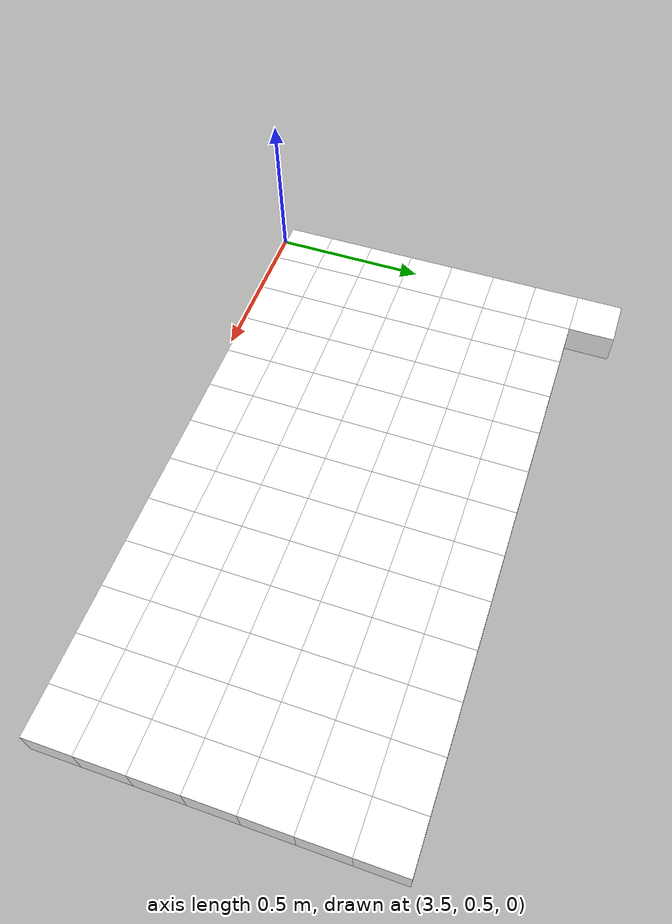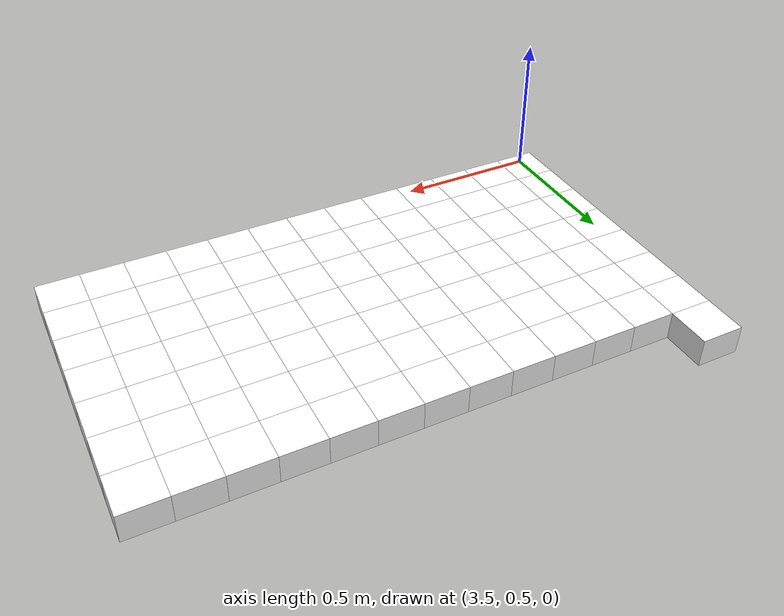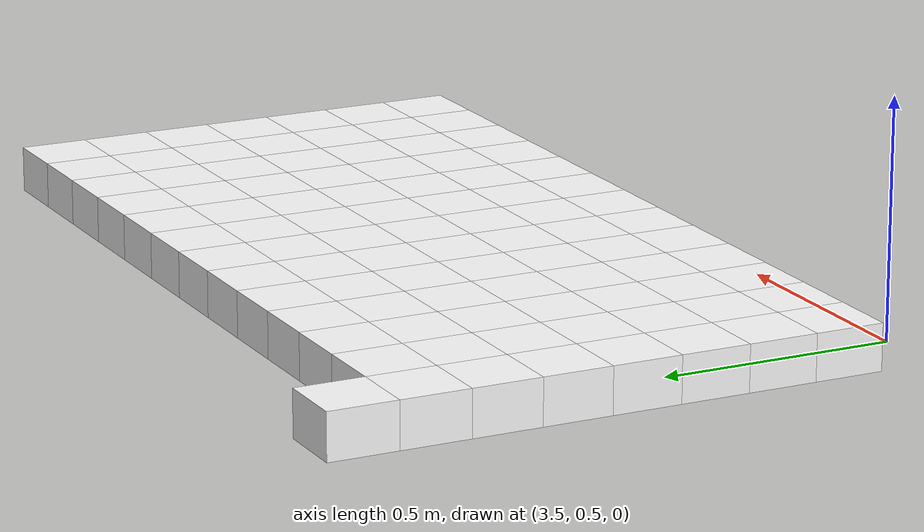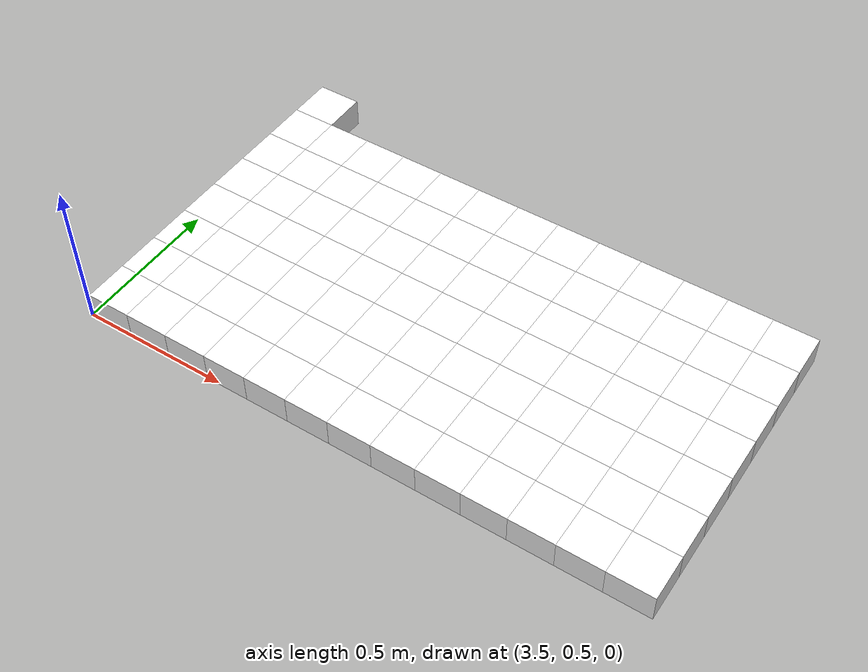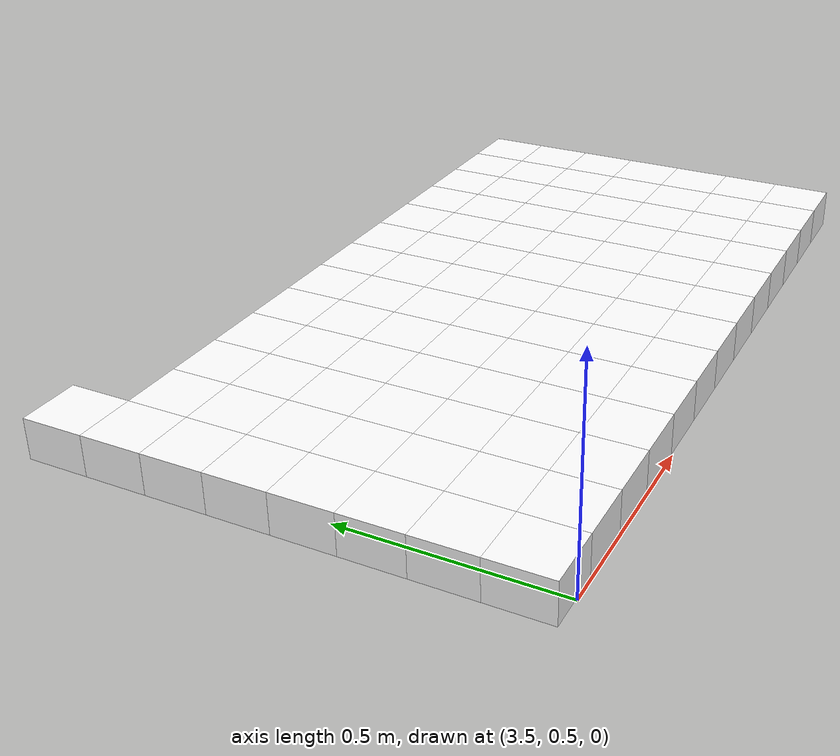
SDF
<sdf version="1.7">
 <world name="default">
  <include><uri>model://sun</uri></include>
  <model name="static_environment">
   <static>true</static>
   <link name="region_427">
    <pose>3.5500000000000025 0.6 0.0 0.0 0.0 0.0</pose>
    <collision name="region_427_collision">
     <geometry><box><size>0.15 0.15 0.1</size></box></geometry>
     <surface><friction><ode><mu>1.0</mu><mu2>1.0</mu2></ode></friction></surface>
    </collision>
    <visual name="region_427_visual">
     <geometry><box><size>0.15 0.15 0.1</size></box></geometry>
     <material><ambient>1.0 1.0 1.0 1.0</ambient><diffuse>1.0 1.0 1.0 1.0</diffuse></material>
    </visual>
   </link>
   <link name="region_428">
    <pose>3.700000000000003 0.6 0.0 0.0 0.0 0.0</pose>
    <collision name="region_428_collision">
     <geometry><box><size>0.15 0.15 0.1</size></box></geometry>
     <surface><friction><ode><mu>1.0</mu><mu2>1.0</mu2></ode></friction></surface>
    </collision>
    <visual name="region_428_visual">
     <geometry><box><size>0.15 0.15 0.1</size></box></geometry>
     <material><ambient>1.0 1.0 1.0 1.0</ambient><diffuse>1.0 1.0 1.0 1.0</diffuse></material>
    </visual>
   </link>
   <link name="region_429">
    <pose>3.850000000000003 0.6 0.0 0.0 0.0 0.0</pose>
    <collision name="region_429_collision">
     <geometry><box><size>0.15 0.15 0.1</size></box></geometry>
     <surface><friction><ode><mu>1.0</mu><mu2>1.0</mu2></ode></friction></surface>
    </collision>
    <visual name="region_429_visual">
     <geometry><box><size>0.15 0.15 0.1</size></box></geometry>
     <material><ambient>1.0 1.0 1.0 1.0</ambient><diffuse>1.0 1.0 1.0 1.0</diffuse></material>
    </visual>
   </link>
   <link name="region_430">
    <pose>4.0000000000000036 0.6 0.0 0.0 0.0 0.0</pose>
    <collision name="region_430_collision">
     <geometry><box><size>0.15 0.15 0.1</size></box></geometry>
     <surface><friction><ode><mu>1.0</mu><mu2>1.0</mu2></ode></friction></surface>
    </collision>
    <visual name="region_430_visual">
     <geometry><box><size>0.15 0.15 0.1</size></box></geometry>
     <material><ambient>1.0 1.0 1.0 1.0</ambient><diffuse>1.0 1.0 1.0 1.0</diffuse></material>
    </visual>
   </link>
   <link name="region_431">
    <pose>4.150000000000004 0.6 0.0 0.0 0.0 0.0</pose>
    <collision name="region_431_collision">
     <geometry><box><size>0.15 0.15 0.1</size></box></geometry>
     <surface><friction><ode><mu>1.0</mu><mu2>1.0</mu2></ode></friction></surface>
    </collision>
    <visual name="region_431_visual">
     <geometry><box><size>0.15 0.15 0.1</size></box></geometry>
     <material><ambient>1.0 1.0 1.0 1.0</ambient><diffuse>1.0 1.0 1.0 1.0</diffuse></material>
    </visual>
   </link>
   <link name="region_432">
    <pose>4.300000000000004 0.6 0.0 0.0 0.0 0.0</pose>
    <collision name="region_432_collision">
     <geometry><box><size>0.15 0.15 0.1</size></box></geometry>
     <surface><friction><ode><mu>1.0</mu><mu2>1.0</mu2></ode></friction></surface>
    </collision>
    <visual name="region_432_visual">
     <geometry><box><size>0.15 0.15 0.1</size></box></geometry>
     <material><ambient>1.0 1.0 1.0 1.0</ambient><diffuse>1.0 1.0 1.0 1.0</diffuse></material>
    </visual>
   </link>
   <link name="region_433">
    <pose>4.450000000000005 0.6 0.0 0.0 0.0 0.0</pose>
    <collision name="region_433_collision">
     <geometry><box><size>0.15 0.15 0.1</size></box></geometry>
     <surface><friction><ode><mu>1.0</mu><mu2>1.0</mu2></ode></friction></surface>
    </collision>
    <visual name="region_433_visual">
     <geometry><box><size>0.15 0.15 0.1</size></box></geometry>
     <material><ambient>1.0 1.0 1.0 1.0</ambient><diffuse>1.0 1.0 1.0 1.0</diffuse></material>
    </visual>
   </link>
   <link name="region_434">
    <pose>4.600000000000005 0.6 0.0 0.0 0.0 0.0</pose>
    <collision name="region_434_collision">
     <geometry><box><size>0.15 0.15 0.1</size></box></geometry>
     <surface><friction><ode><mu>1.0</mu><mu2>1.0</mu2></ode></friction></surface>
    </collision>
    <visual name="region_434_visual">
     <geometry><box><size>0.15 0.15 0.1</size></box></geometry>
     <material><ambient>1.0 1.0 1.0 1.0</ambient><diffuse>1.0 1.0 1.0 1.0</diffuse></material>
    </visual>
   </link>
   <link name="region_435">
    <pose>4.750000000000005 0.6 0.0 0.0 0.0 0.0</pose>
    <collision name="region_435_collision">
     <geometry><box><size>0.15 0.15 0.1</size></box></geometry>
     <surface><friction><ode><mu>1.0</mu><mu2>1.0</mu2></ode></friction></surface>
    </collision>
    <visual name="region_435_visual">
     <geometry><box><size>0.15 0.15 0.1</size></box></geometry>
     <material><ambient>1.0 1.0 1.0 1.0</ambient><diffuse>1.0 1.0 1.0 1.0</diffuse></material>
    </visual>
   </link>
   <link name="region_436">
    <pose>4.900000000000006 0.6 0.0 0.0 0.0 0.0</pose>
    <collision name="region_436_collision">
     <geometry><box><size>0.15 0.15 0.1</size></box></geometry>
     <surface><friction><ode><mu>1.0</mu><mu2>1.0</mu2></ode></friction></surface>
    </collision>
    <visual name="region_436_visual">
     <geometry><box><size>0.15 0.15 0.1</size></box></geometry>
     <material><ambient>1.0 1.0 1.0 1.0</ambient><diffuse>1.0 1.0 1.0 1.0</diffuse></material>
    </visual>
   </link>
   <link name="region_437">
    <pose>5.050000000000006 0.6 0.0 0.0 0.0 0.0</pose>
    <collision name="region_437_collision">
     <geometry><box><size>0.15 0.15 0.1</size></box></geometry>
     <surface><friction><ode><mu>1.0</mu><mu2>1.0</mu2></ode></friction></surface>
    </collision>
    <visual name="region_437_visual">
     <geometry><box><size>0.15 0.15 0.1</size></box></geometry>
     <material><ambient>1.0 1.0 1.0 1.0</ambient><diffuse>1.0 1.0 1.0 1.0</diffuse></material>
    </visual>
   </link>
   <link name="region_438">
    <pose>5.200000000000006 0.6 0.0 0.0 0.0 0.0</pose>
    <collision name="region_438_collision">
     <geometry><box><size>0.15 0.15 0.1</size></box></geometry>
     <surface><friction><ode><mu>1.0</mu><mu2>1.0</mu2></ode></friction></surface>
    </collision>
    <visual name="region_438_visual">
     <geometry><box><size>0.15 0.15 0.1</size></box></geometry>
     <material><ambient>1.0 1.0 1.0 1.0</ambient><diffuse>1.0 1.0 1.0 1.0</diffuse></material>
    </visual>
   </link>
   <link name="region_439">
    <pose>5.350000000000007 0.6 0.0 0.0 0.0 0.0</pose>
    <collision name="region_439_collision">
     <geometry><box><size>0.15 0.15 0.1</size></box></geometry>
     <surface><friction><ode><mu>1.0</mu><mu2>1.0</mu2></ode></friction></surface>
    </collision>
    <visual name="region_439_visual">
     <geometry><box><size>0.15 0.15 0.1</size></box></geometry>
     <material><ambient>1.0 1.0 1.0 1.0</ambient><diffuse>1.0 1.0 1.0 1.0</diffuse></material>
    </visual>
   </link>
   <link name="region_447">
    <pose>3.5500000000000025 0.75 0.0 0.0 0.0 0.0</pose>
    <collision name="region_447_collision">
     <geometry><box><size>0.15 0.15 0.1</size></box></geometry>
     <surface><friction><ode><mu>1.0</mu><mu2>1.0</mu2></ode></friction></surface>
    </collision>
    <visual name="region_447_visual">
     <geometry><box><size>0.15 0.15 0.1</size></box></geometry>
     <material><ambient>1.0 1.0 1.0 1.0</ambient><diffuse>1.0 1.0 1.0 1.0</diffuse></material>
    </visual>
   </link>
   <link name="region_448">
    <pose>3.700000000000003 0.75 0.0 0.0 0.0 0.0</pose>
    <collision name="region_448_collision">
     <geometry><box><size>0.15 0.15 0.1</size></box></geometry>
     <surface><friction><ode><mu>1.0</mu><mu2>1.0</mu2></ode></friction></surface>
    </collision>
    <visual name="region_448_visual">
     <geometry><box><size>0.15 0.15 0.1</size></box></geometry>
     <material><ambient>1.0 1.0 1.0 1.0</ambient><diffuse>1.0 1.0 1.0 1.0</diffuse></material>
    </visual>
   </link>
   <link name="region_449">
    <pose>3.850000000000003 0.75 0.0 0.0 0.0 0.0</pose>
    <collision name="region_449_collision">
     <geometry><box><size>0.15 0.15 0.1</size></box></geometry>
     <surface><friction><ode><mu>1.0</mu><mu2>1.0</mu2></ode></friction></surface>
    </collision>
    <visual name="region_449_visual">
     <geometry><box><size>0.15 0.15 0.1</size></box></geometry>
     <material><ambient>1.0 1.0 1.0 1.0</ambient><diffuse>1.0 1.0 1.0 1.0</diffuse></material>
    </visual>
   </link>
   <link name="region_450">
    <pose>4.0000000000000036 0.75 0.0 0.0 0.0 0.0</pose>
    <collision name="region_450_collision">
     <geometry><box><size>0.15 0.15 0.1</size></box></geometry>
     <surface><friction><ode><mu>1.0</mu><mu2>1.0</mu2></ode></friction></surface>
    </collision>
    <visual name="region_450_visual">
     <geometry><box><size>0.15 0.15 0.1</size></box></geometry>
     <material><ambient>1.0 1.0 1.0 1.0</ambient><diffuse>1.0 1.0 1.0 1.0</diffuse></material>
    </visual>
   </link>
   <link name="region_451">
    <pose>4.150000000000004 0.75 0.0 0.0 0.0 0.0</pose>
    <collision name="region_451_collision">
     <geometry><box><size>0.15 0.15 0.1</size></box></geometry>
     <surface><friction><ode><mu>1.0</mu><mu2>1.0</mu2></ode></friction></surface>
    </collision>
    <visual name="region_451_visual">
     <geometry><box><size>0.15 0.15 0.1</size></box></geometry>
     <material><ambient>1.0 1.0 1.0 1.0</ambient><diffuse>1.0 1.0 1.0 1.0</diffuse></material>
    </visual>
   </link>
   <link name="region_452">
    <pose>4.300000000000004 0.75 0.0 0.0 0.0 0.0</pose>
    <collision name="region_452_collision">
     <geometry><box><size>0.15 0.15 0.1</size></box></geometry>
     <surface><friction><ode><mu>1.0</mu><mu2>1.0</mu2></ode></friction></surface>
    </collision>
    <visual name="region_452_visual">
     <geometry><box><size>0.15 0.15 0.1</size></box></geometry>
     <material><ambient>1.0 1.0 1.0 1.0</ambient><diffuse>1.0 1.0 1.0 1.0</diffuse></material>
    </visual>
   </link>
   <link name="region_453">
    <pose>4.450000000000005 0.75 0.0 0.0 0.0 0.0</pose>
    <collision name="region_453_collision">
     <geometry><box><size>0.15 0.15 0.1</size></box></geometry>
     <surface><friction><ode><mu>1.0</mu><mu2>1.0</mu2></ode></friction></surface>
    </collision>
    <visual name="region_453_visual">
     <geometry><box><size>0.15 0.15 0.1</size></box></geometry>
     <material><ambient>1.0 1.0 1.0 1.0</ambient><diffuse>1.0 1.0 1.0 1.0</diffuse></material>
    </visual>
   </link>
   <link name="region_454">
    <pose>4.600000000000005 0.75 0.0 0.0 0.0 0.0</pose>
    <collision name="region_454_collision">
     <geometry><box><size>0.15 0.15 0.1</size></box></geometry>
     <surface><friction><ode><mu>1.0</mu><mu2>1.0</mu2></ode></friction></surface>
    </collision>
    <visual name="region_454_visual">
     <geometry><box><size>0.15 0.15 0.1</size></box></geometry>
     <material><ambient>1.0 1.0 1.0 1.0</ambient><diffuse>1.0 1.0 1.0 1.0</diffuse></material>
    </visual>
   </link>
   <link name="region_455">
    <pose>4.750000000000005 0.75 0.0 0.0 0.0 0.0</pose>
    <collision name="region_455_collision">
     <geometry><box><size>0.15 0.15 0.1</size></box></geometry>
     <surface><friction><ode><mu>1.0</mu><mu2>1.0</mu2></ode></friction></surface>
    </collision>
    <visual name="region_455_visual">
     <geometry><box><size>0.15 0.15 0.1</size></box></geometry>
     <material><ambient>1.0 1.0 1.0 1.0</ambient><diffuse>1.0 1.0 1.0 1.0</diffuse></material>
    </visual>
   </link>
   <link name="region_456">
    <pose>4.900000000000006 0.75 0.0 0.0 0.0 0.0</pose>
    <collision name="region_456_collision">
     <geometry><box><size>0.15 0.15 0.1</size></box></geometry>
     <surface><friction><ode><mu>1.0</mu><mu2>1.0</mu2></ode></friction></surface>
    </collision>
    <visual name="region_456_visual">
     <geometry><box><size>0.15 0.15 0.1</size></box></geometry>
     <material><ambient>1.0 1.0 1.0 1.0</ambient><diffuse>1.0 1.0 1.0 1.0</diffuse></material>
    </visual>
   </link>
   <link name="region_457">
    <pose>5.050000000000006 0.75 0.0 0.0 0.0 0.0</pose>
    <collision name="region_457_collision">
     <geometry><box><size>0.15 0.15 0.1</size></box></geometry>
     <surface><friction><ode><mu>1.0</mu><mu2>1.0</mu2></ode></friction></surface>
    </collision>
    <visual name="region_457_visual">
     <geometry><box><size>0.15 0.15 0.1</size></box></geometry>
     <material><ambient>1.0 1.0 1.0 1.0</ambient><diffuse>1.0 1.0 1.0 1.0</diffuse></material>
    </visual>
   </link>
   <link name="region_458">
    <pose>5.200000000000006 0.75 0.0 0.0 0.0 0.0</pose>
    <collision name="region_458_collision">
     <geometry><box><size>0.15 0.15 0.1</size></box></geometry>
     <surface><friction><ode><mu>1.0</mu><mu2>1.0</mu2></ode></friction></surface>
    </collision>
    <visual name="region_458_visual">
     <geometry><box><size>0.15 0.15 0.1</size></box></geometry>
     <material><ambient>1.0 1.0 1.0 1.0</ambient><diffuse>1.0 1.0 1.0 1.0</diffuse></material>
    </visual>
   </link>
   <link name="region_459">
    <pose>5.350000000000007 0.75 0.0 0.0 0.0 0.0</pose>
    <collision name="region_459_collision">
     <geometry><box><size>0.15 0.15 0.1</size></box></geometry>
     <surface><friction><ode><mu>1.0</mu><mu2>1.0</mu2></ode></friction></surface>
    </collision>
    <visual name="region_459_visual">
     <geometry><box><size>0.15 0.15 0.1</size></box></geometry>
     <material><ambient>1.0 1.0 1.0 1.0</ambient><diffuse>1.0 1.0 1.0 1.0</diffuse></material>
    </visual>
   </link>
   <link name="region_467">
    <pose>3.5500000000000025 0.8999999999999999 0.0 0.0 0.0 0.0</pose>
    <collision name="region_467_collision">
     <geometry><box><size>0.15 0.15 0.1</size></box></geometry>
     <surface><friction><ode><mu>1.0</mu><mu2>1.0</mu2></ode></friction></surface>
    </collision>
    <visual name="region_467_visual">
     <geometry><box><size>0.15 0.15 0.1</size></box></geometry>
     <material><ambient>1.0 1.0 1.0 1.0</ambient><diffuse>1.0 1.0 1.0 1.0</diffuse></material>
    </visual>
   </link>
   <link name="region_468">
    <pose>3.700000000000003 0.8999999999999999 0.0 0.0 0.0 0.0</pose>
    <collision name="region_468_collision">
     <geometry><box><size>0.15 0.15 0.1</size></box></geometry>
     <surface><friction><ode><mu>1.0</mu><mu2>1.0</mu2></ode></friction></surface>
    </collision>
    <visual name="region_468_visual">
     <geometry><box><size>0.15 0.15 0.1</size></box></geometry>
     <material><ambient>1.0 1.0 1.0 1.0</ambient><diffuse>1.0 1.0 1.0 1.0</diffuse></material>
    </visual>
   </link>
   <link name="region_469">
    <pose>3.850000000000003 0.8999999999999999 0.0 0.0 0.0 0.0</pose>
    <collision name="region_469_collision">
     <geometry><box><size>0.15 0.15 0.1</size></box></geometry>
     <surface><friction><ode><mu>1.0</mu><mu2>1.0</mu2></ode></friction></surface>
    </collision>
    <visual name="region_469_visual">
     <geometry><box><size>0.15 0.15 0.1</size></box></geometry>
     <material><ambient>1.0 1.0 1.0 1.0</ambient><diffuse>1.0 1.0 1.0 1.0</diffuse></material>
    </visual>
   </link>
   <link name="region_470">
    <pose>4.0000000000000036 0.8999999999999999 0.0 0.0 0.0 0.0</pose>
    <collision name="region_470_collision">
     <geometry><box><size>0.15 0.15 0.1</size></box></geometry>
     <surface><friction><ode><mu>1.0</mu><mu2>1.0</mu2></ode></friction></surface>
    </collision>
    <visual name="region_470_visual">
     <geometry><box><size>0.15 0.15 0.1</size></box></geometry>
     <material><ambient>1.0 1.0 1.0 1.0</ambient><diffuse>1.0 1.0 1.0 1.0</diffuse></material>
    </visual>
   </link>
   <link name="region_471">
    <pose>4.150000000000004 0.8999999999999999 0.0 0.0 0.0 0.0</pose>
    <collision name="region_471_collision">
     <geometry><box><size>0.15 0.15 0.1</size></box></geometry>
     <surface><friction><ode><mu>1.0</mu><mu2>1.0</mu2></ode></friction></surface>
    </collision>
    <visual name="region_471_visual">
     <geometry><box><size>0.15 0.15 0.1</size></box></geometry>
     <material><ambient>1.0 1.0 1.0 1.0</ambient><diffuse>1.0 1.0 1.0 1.0</diffuse></material>
    </visual>
   </link>
   <link name="region_472">
    <pose>4.300000000000004 0.8999999999999999 0.0 0.0 0.0 0.0</pose>
    <collision name="region_472_collision">
     <geometry><box><size>0.15 0.15 0.1</size></box></geometry>
     <surface><friction><ode><mu>1.0</mu><mu2>1.0</mu2></ode></friction></surface>
    </collision>
    <visual name="region_472_visual">
     <geometry><box><size>0.15 0.15 0.1</size></box></geometry>
     <material><ambient>1.0 1.0 1.0 1.0</ambient><diffuse>1.0 1.0 1.0 1.0</diffuse></material>
    </visual>
   </link>
   <link name="region_473">
    <pose>4.450000000000005 0.8999999999999999 0.0 0.0 0.0 0.0</pose>
    <collision name="region_473_collision">
     <geometry><box><size>0.15 0.15 0.1</size></box></geometry>
     <surface><friction><ode><mu>1.0</mu><mu2>1.0</mu2></ode></friction></surface>
    </collision>
    <visual name="region_473_visual">
     <geometry><box><size>0.15 0.15 0.1</size></box></geometry>
     <material><ambient>1.0 1.0 1.0 1.0</ambient><diffuse>1.0 1.0 1.0 1.0</diffuse></material>
    </visual>
   </link>
   <link name="region_474">
    <pose>4.600000000000005 0.8999999999999999 0.0 0.0 0.0 0.0</pose>
    <collision name="region_474_collision">
     <geometry><box><size>0.15 0.15 0.1</size></box></geometry>
     <surface><friction><ode><mu>1.0</mu><mu2>1.0</mu2></ode></friction></surface>
    </collision>
    <visual name="region_474_visual">
     <geometry><box><size>0.15 0.15 0.1</size></box></geometry>
     <material><ambient>1.0 1.0 1.0 1.0</ambient><diffuse>1.0 1.0 1.0 1.0</diffuse></material>
    </visual>
   </link>
   <link name="region_475">
    <pose>4.750000000000005 0.8999999999999999 0.0 0.0 0.0 0.0</pose>
    <collision name="region_475_collision">
     <geometry><box><size>0.15 0.15 0.1</size></box></geometry>
     <surface><friction><ode><mu>1.0</mu><mu2>1.0</mu2></ode></friction></surface>
    </collision>
    <visual name="region_475_visual">
     <geometry><box><size>0.15 0.15 0.1</size></box></geometry>
     <material><ambient>1.0 1.0 1.0 1.0</ambient><diffuse>1.0 1.0 1.0 1.0</diffuse></material>
    </visual>
   </link>
   <link name="region_476">
    <pose>4.900000000000006 0.8999999999999999 0.0 0.0 0.0 0.0</pose>
    <collision name="region_476_collision">
     <geometry><box><size>0.15 0.15 0.1</size></box></geometry>
     <surface><friction><ode><mu>1.0</mu><mu2>1.0</mu2></ode></friction></surface>
    </collision>
    <visual name="region_476_visual">
     <geometry><box><size>0.15 0.15 0.1</size></box></geometry>
     <material><ambient>1.0 1.0 1.0 1.0</ambient><diffuse>1.0 1.0 1.0 1.0</diffuse></material>
    </visual>
   </link>
   <link name="region_477">
    <pose>5.050000000000006 0.8999999999999999 0.0 0.0 0.0 0.0</pose>
    <collision name="region_477_collision">
     <geometry><box><size>0.15 0.15 0.1</size></box></geometry>
     <surface><friction><ode><mu>1.0</mu><mu2>1.0</mu2></ode></friction></surface>
    </collision>
    <visual name="region_477_visual">
     <geometry><box><size>0.15 0.15 0.1</size></box></geometry>
     <material><ambient>1.0 1.0 1.0 1.0</ambient><diffuse>1.0 1.0 1.0 1.0</diffuse></material>
    </visual>
   </link>
   <link name="region_478">
    <pose>5.200000000000006 0.8999999999999999 0.0 0.0 0.0 0.0</pose>
    <collision name="region_478_collision">
     <geometry><box><size>0.15 0.15 0.1</size></box></geometry>
     <surface><friction><ode><mu>1.0</mu><mu2>1.0</mu2></ode></friction></surface>
    </collision>
    <visual name="region_478_visual">
     <geometry><box><size>0.15 0.15 0.1</size></box></geometry>
     <material><ambient>1.0 1.0 1.0 1.0</ambient><diffuse>1.0 1.0 1.0 1.0</diffuse></material>
    </visual>
   </link>
   <link name="region_479">
    <pose>5.350000000000007 0.8999999999999999 0.0 0.0 0.0 0.0</pose>
    <collision name="region_479_collision">
     <geometry><box><size>0.15 0.15 0.1</size></box></geometry>
     <surface><friction><ode><mu>1.0</mu><mu2>1.0</mu2></ode></friction></surface>
    </collision>
    <visual name="region_479_visual">
     <geometry><box><size>0.15 0.15 0.1</size></box></geometry>
     <material><ambient>1.0 1.0 1.0 1.0</ambient><diffuse>1.0 1.0 1.0 1.0</diffuse></material>
    </visual>
   </link>
   <link name="region_487">
    <pose>3.5500000000000025 1.0499999999999998 0.0 0.0 0.0 0.0</pose>
    <collision name="region_487_collision">
     <geometry><box><size>0.15 0.15 0.1</size></box></geometry>
     <surface><friction><ode><mu>1.0</mu><mu2>1.0</mu2></ode></friction></surface>
    </collision>
    <visual name="region_487_visual">
     <geometry><box><size>0.15 0.15 0.1</size></box></geometry>
     <material><ambient>1.0 1.0 1.0 1.0</ambient><diffuse>1.0 1.0 1.0 1.0</diffuse></material>
    </visual>
   </link>
   <link name="region_488">
    <pose>3.700000000000003 1.0499999999999998 0.0 0.0 0.0 0.0</pose>
    <collision name="region_488_collision">
     <geometry><box><size>0.15 0.15 0.1</size></box></geometry>
     <surface><friction><ode><mu>1.0</mu><mu2>1.0</mu2></ode></friction></surface>
    </collision>
    <visual name="region_488_visual">
     <geometry><box><size>0.15 0.15 0.1</size></box></geometry>
     <material><ambient>1.0 1.0 1.0 1.0</ambient><diffuse>1.0 1.0 1.0 1.0</diffuse></material>
    </visual>
   </link>
   <link name="region_489">
    <pose>3.850000000000003 1.0499999999999998 0.0 0.0 0.0 0.0</pose>
    <collision name="region_489_collision">
     <geometry><box><size>0.15 0.15 0.1</size></box></geometry>
     <surface><friction><ode><mu>1.0</mu><mu2>1.0</mu2></ode></friction></surface>
    </collision>
    <visual name="region_489_visual">
     <geometry><box><size>0.15 0.15 0.1</size></box></geometry>
     <material><ambient>1.0 1.0 1.0 1.0</ambient><diffuse>1.0 1.0 1.0 1.0</diffuse></material>
    </visual>
   </link>
   <link name="region_490">
    <pose>4.0000000000000036 1.0499999999999998 0.0 0.0 0.0 0.0</pose>
    <collision name="region_490_collision">
     <geometry><box><size>0.15 0.15 0.1</size></box></geometry>
     <surface><friction><ode><mu>1.0</mu><mu2>1.0</mu2></ode></friction></surface>
    </collision>
    <visual name="region_490_visual">
     <geometry><box><size>0.15 0.15 0.1</size></box></geometry>
     <material><ambient>1.0 1.0 1.0 1.0</ambient><diffuse>1.0 1.0 1.0 1.0</diffuse></material>
    </visual>
   </link>
   <link name="region_491">
    <pose>4.150000000000004 1.0499999999999998 0.0 0.0 0.0 0.0</pose>
    <collision name="region_491_collision">
     <geometry><box><size>0.15 0.15 0.1</size></box></geometry>
     <surface><friction><ode><mu>1.0</mu><mu2>1.0</mu2></ode></friction></surface>
    </collision>
    <visual name="region_491_visual">
     <geometry><box><size>0.15 0.15 0.1</size></box></geometry>
     <material><ambient>1.0 1.0 1.0 1.0</ambient><diffuse>1.0 1.0 1.0 1.0</diffuse></material>
    </visual>
   </link>
   <link name="region_492">
    <pose>4.300000000000004 1.0499999999999998 0.0 0.0 0.0 0.0</pose>
    <collision name="region_492_collision">
     <geometry><box><size>0.15 0.15 0.1</size></box></geometry>
     <surface><friction><ode><mu>1.0</mu><mu2>1.0</mu2></ode></friction></surface>
    </collision>
    <visual name="region_492_visual">
     <geometry><box><size>0.15 0.15 0.1</size></box></geometry>
     <material><ambient>1.0 1.0 1.0 1.0</ambient><diffuse>1.0 1.0 1.0 1.0</diffuse></material>
    </visual>
   </link>
   <link name="region_493">
    <pose>4.450000000000005 1.0499999999999998 0.0 0.0 0.0 0.0</pose>
    <collision name="region_493_collision">
     <geometry><box><size>0.15 0.15 0.1</size></box></geometry>
     <surface><friction><ode><mu>1.0</mu><mu2>1.0</mu2></ode></friction></surface>
    </collision>
    <visual name="region_493_visual">
     <geometry><box><size>0.15 0.15 0.1</size></box></geometry>
     <material><ambient>1.0 1.0 1.0 1.0</ambient><diffuse>1.0 1.0 1.0 1.0</diffuse></material>
    </visual>
   </link>
   <link name="region_494">
    <pose>4.600000000000005 1.0499999999999998 0.0 0.0 0.0 0.0</pose>
    <collision name="region_494_collision">
     <geometry><box><size>0.15 0.15 0.1</size></box></geometry>
     <surface><friction><ode><mu>1.0</mu><mu2>1.0</mu2></ode></friction></surface>
    </collision>
    <visual name="region_494_visual">
     <geometry><box><size>0.15 0.15 0.1</size></box></geometry>
     <material><ambient>1.0 1.0 1.0 1.0</ambient><diffuse>1.0 1.0 1.0 1.0</diffuse></material>
    </visual>
   </link>
   <link name="region_495">
    <pose>4.750000000000005 1.0499999999999998 0.0 0.0 0.0 0.0</pose>
    <collision name="region_495_collision">
     <geometry><box><size>0.15 0.15 0.1</size></box></geometry>
     <surface><friction><ode><mu>1.0</mu><mu2>1.0</mu2></ode></friction></surface>
    </collision>
    <visual name="region_495_visual">
     <geometry><box><size>0.15 0.15 0.1</size></box></geometry>
     <material><ambient>1.0 1.0 1.0 1.0</ambient><diffuse>1.0 1.0 1.0 1.0</diffuse></material>
    </visual>
   </link>
   <link name="region_496">
    <pose>4.900000000000006 1.0499999999999998 0.0 0.0 0.0 0.0</pose>
    <collision name="region_496_collision">
     <geometry><box><size>0.15 0.15 0.1</size></box></geometry>
     <surface><friction><ode><mu>1.0</mu><mu2>1.0</mu2></ode></friction></surface>
    </collision>
    <visual name="region_496_visual">
     <geometry><box><size>0.15 0.15 0.1</size></box></geometry>
     <material><ambient>1.0 1.0 1.0 1.0</ambient><diffuse>1.0 1.0 1.0 1.0</diffuse></material>
    </visual>
   </link>
   <link name="region_497">
    <pose>5.050000000000006 1.0499999999999998 0.0 0.0 0.0 0.0</pose>
    <collision name="region_497_collision">
     <geometry><box><size>0.15 0.15 0.1</size></box></geometry>
     <surface><friction><ode><mu>1.0</mu><mu2>1.0</mu2></ode></friction></surface>
    </collision>
    <visual name="region_497_visual">
     <geometry><box><size>0.15 0.15 0.1</size></box></geometry>
     <material><ambient>1.0 1.0 1.0 1.0</ambient><diffuse>1.0 1.0 1.0 1.0</diffuse></material>
    </visual>
   </link>
   <link name="region_498">
    <pose>5.200000000000006 1.0499999999999998 0.0 0.0 0.0 0.0</pose>
    <collision name="region_498_collision">
     <geometry><box><size>0.15 0.15 0.1</size></box></geometry>
     <surface><friction><ode><mu>1.0</mu><mu2>1.0</mu2></ode></friction></surface>
    </collision>
    <visual name="region_498_visual">
     <geometry><box><size>0.15 0.15 0.1</size></box></geometry>
     <material><ambient>1.0 1.0 1.0 1.0</ambient><diffuse>1.0 1.0 1.0 1.0</diffuse></material>
    </visual>
   </link>
   <link name="region_499">
    <pose>5.350000000000007 1.0499999999999998 0.0 0.0 0.0 0.0</pose>
    <collision name="region_499_collision">
     <geometry><box><size>0.15 0.15 0.1</size></box></geometry>
     <surface><friction><ode><mu>1.0</mu><mu2>1.0</mu2></ode></friction></surface>
    </collision>
    <visual name="region_499_visual">
     <geometry><box><size>0.15 0.15 0.1</size></box></geometry>
     <material><ambient>1.0 1.0 1.0 1.0</ambient><diffuse>1.0 1.0 1.0 1.0</diffuse></material>
    </visual>
   </link>
   <link name="region_507">
    <pose>3.5500000000000025 1.2 0.0 0.0 0.0 0.0</pose>
    <collision name="region_507_collision">
     <geometry><box><size>0.15 0.15 0.1</size></box></geometry>
     <surface><friction><ode><mu>1.0</mu><mu2>1.0</mu2></ode></friction></surface>
    </collision>
    <visual name="region_507_visual">
     <geometry><box><size>0.15 0.15 0.1</size></box></geometry>
     <material><ambient>1.0 1.0 1.0 1.0</ambient><diffuse>1.0 1.0 1.0 1.0</diffuse></material>
    </visual>
   </link>
   <link name="region_508">
    <pose>3.700000000000003 1.2 0.0 0.0 0.0 0.0</pose>
    <collision name="region_508_collision">
     <geometry><box><size>0.15 0.15 0.1</size></box></geometry>
     <surface><friction><ode><mu>1.0</mu><mu2>1.0</mu2></ode></friction></surface>
    </collision>
    <visual name="region_508_visual">
     <geometry><box><size>0.15 0.15 0.1</size></box></geometry>
     <material><ambient>1.0 1.0 1.0 1.0</ambient><diffuse>1.0 1.0 1.0 1.0</diffuse></material>
    </visual>
   </link>
   <link name="region_509">
    <pose>3.850000000000003 1.2 0.0 0.0 0.0 0.0</pose>
    <collision name="region_509_collision">
     <geometry><box><size>0.15 0.15 0.1</size></box></geometry>
     <surface><friction><ode><mu>1.0</mu><mu2>1.0</mu2></ode></friction></surface>
    </collision>
    <visual name="region_509_visual">
     <geometry><box><size>0.15 0.15 0.1</size></box></geometry>
     <material><ambient>1.0 1.0 1.0 1.0</ambient><diffuse>1.0 1.0 1.0 1.0</diffuse></material>
    </visual>
   </link>
   <link name="region_510">
    <pose>4.0000000000000036 1.2 0.0 0.0 0.0 0.0</pose>
    <collision name="region_510_collision">
     <geometry><box><size>0.15 0.15 0.1</size></box></geometry>
     <surface><friction><ode><mu>1.0</mu><mu2>1.0</mu2></ode></friction></surface>
    </collision>
    <visual name="region_510_visual">
     <geometry><box><size>0.15 0.15 0.1</size></box></geometry>
     <material><ambient>1.0 1.0 1.0 1.0</ambient><diffuse>1.0 1.0 1.0 1.0</diffuse></material>
    </visual>
   </link>
   <link name="region_511">
    <pose>4.150000000000004 1.2 0.0 0.0 0.0 0.0</pose>
    <collision name="region_511_collision">
     <geometry><box><size>0.15 0.15 0.1</size></box></geometry>
     <surface><friction><ode><mu>1.0</mu><mu2>1.0</mu2></ode></friction></surface>
    </collision>
    <visual name="region_511_visual">
     <geometry><box><size>0.15 0.15 0.1</size></box></geometry>
     <material><ambient>1.0 1.0 1.0 1.0</ambient><diffuse>1.0 1.0 1.0 1.0</diffuse></material>
    </visual>
   </link>
   <link name="region_512">
    <pose>4.300000000000004 1.2 0.0 0.0 0.0 0.0</pose>
    <collision name="region_512_collision">
     <geometry><box><size>0.15 0.15 0.1</size></box></geometry>
     <surface><friction><ode><mu>1.0</mu><mu2>1.0</mu2></ode></friction></surface>
    </collision>
    <visual name="region_512_visual">
     <geometry><box><size>0.15 0.15 0.1</size></box></geometry>
     <material><ambient>1.0 1.0 1.0 1.0</ambient><diffuse>1.0 1.0 1.0 1.0</diffuse></material>
    </visual>
   </link>
   <link name="region_513">
    <pose>4.450000000000005 1.2 0.0 0.0 0.0 0.0</pose>
    <collision name="region_513_collision">
     <geometry><box><size>0.15 0.15 0.1</size></box></geometry>
     <surface><friction><ode><mu>1.0</mu><mu2>1.0</mu2></ode></friction></surface>
    </collision>
    <visual name="region_513_visual">
     <geometry><box><size>0.15 0.15 0.1</size></box></geometry>
     <material><ambient>1.0 1.0 1.0 1.0</ambient><diffuse>1.0 1.0 1.0 1.0</diffuse></material>
    </visual>
   </link>
   <link name="region_514">
    <pose>4.600000000000005 1.2 0.0 0.0 0.0 0.0</pose>
    <collision name="region_514_collision">
     <geometry><box><size>0.15 0.15 0.1</size></box></geometry>
     <surface><friction><ode><mu>1.0</mu><mu2>1.0</mu2></ode></friction></surface>
    </collision>
    <visual name="region_514_visual">
     <geometry><box><size>0.15 0.15 0.1</size></box></geometry>
     <material><ambient>1.0 1.0 1.0 1.0</ambient><diffuse>1.0 1.0 1.0 1.0</diffuse></material>
    </visual>
   </link>
   <link name="region_515">
    <pose>4.750000000000005 1.2 0.0 0.0 0.0 0.0</pose>
    <collision name="region_515_collision">
     <geometry><box><size>0.15 0.15 0.1</size></box></geometry>
     <surface><friction><ode><mu>1.0</mu><mu2>1.0</mu2></ode></friction></surface>
    </collision>
    <visual name="region_515_visual">
     <geometry><box><size>0.15 0.15 0.1</size></box></geometry>
     <material><ambient>1.0 1.0 1.0 1.0</ambient><diffuse>1.0 1.0 1.0 1.0</diffuse></material>
    </visual>
   </link>
   <link name="region_516">
    <pose>4.900000000000006 1.2 0.0 0.0 0.0 0.0</pose>
    <collision name="region_516_collision">
     <geometry><box><size>0.15 0.15 0.1</size></box></geometry>
     <surface><friction><ode><mu>1.0</mu><mu2>1.0</mu2></ode></friction></surface>
    </collision>
    <visual name="region_516_visual">
     <geometry><box><size>0.15 0.15 0.1</size></box></geometry>
     <material><ambient>1.0 1.0 1.0 1.0</ambient><diffuse>1.0 1.0 1.0 1.0</diffuse></material>
    </visual>
   </link>
   <link name="region_517">
    <pose>5.050000000000006 1.2 0.0 0.0 0.0 0.0</pose>
    <collision name="region_517_collision">
     <geometry><box><size>0.15 0.15 0.1</size></box></geometry>
     <surface><friction><ode><mu>1.0</mu><mu2>1.0</mu2></ode></friction></surface>
    </collision>
    <visual name="region_517_visual">
     <geometry><box><size>0.15 0.15 0.1</size></box></geometry>
     <material><ambient>1.0 1.0 1.0 1.0</ambient><diffuse>1.0 1.0 1.0 1.0</diffuse></material>
    </visual>
   </link>
   <link name="region_518">
    <pose>5.200000000000006 1.2 0.0 0.0 0.0 0.0</pose>
    <collision name="region_518_collision">
     <geometry><box><size>0.15 0.15 0.1</size></box></geometry>
     <surface><friction><ode><mu>1.0</mu><mu2>1.0</mu2></ode></friction></surface>
    </collision>
    <visual name="region_518_visual">
     <geometry><box><size>0.15 0.15 0.1</size></box></geometry>
     <material><ambient>1.0 1.0 1.0 1.0</ambient><diffuse>1.0 1.0 1.0 1.0</diffuse></material>
    </visual>
   </link>
   <link name="region_519">
    <pose>5.350000000000007 1.2 0.0 0.0 0.0 0.0</pose>
    <collision name="region_519_collision">
     <geometry><box><size>0.15 0.15 0.1</size></box></geometry>
     <surface><friction><ode><mu>1.0</mu><mu2>1.0</mu2></ode></friction></surface>
    </collision>
    <visual name="region_519_visual">
     <geometry><box><size>0.15 0.15 0.1</size></box></geometry>
     <material><ambient>1.0 1.0 1.0 1.0</ambient><diffuse>1.0 1.0 1.0 1.0</diffuse></material>
    </visual>
   </link>
   <link name="region_527">
    <pose>3.5500000000000025 1.35 0.0 0.0 0.0 0.0</pose>
    <collision name="region_527_collision">
     <geometry><box><size>0.15 0.15 0.1</size></box></geometry>
     <surface><friction><ode><mu>1.0</mu><mu2>1.0</mu2></ode></friction></surface>
    </collision>
    <visual name="region_527_visual">
     <geometry><box><size>0.15 0.15 0.1</size></box></geometry>
     <material><ambient>1.0 1.0 1.0 1.0</ambient><diffuse>1.0 1.0 1.0 1.0</diffuse></material>
    </visual>
   </link>
   <link name="region_528">
    <pose>3.700000000000003 1.35 0.0 0.0 0.0 0.0</pose>
    <collision name="region_528_collision">
     <geometry><box><size>0.15 0.15 0.1</size></box></geometry>
     <surface><friction><ode><mu>1.0</mu><mu2>1.0</mu2></ode></friction></surface>
    </collision>
    <visual name="region_528_visual">
     <geometry><box><size>0.15 0.15 0.1</size></box></geometry>
     <material><ambient>1.0 1.0 1.0 1.0</ambient><diffuse>1.0 1.0 1.0 1.0</diffuse></material>
    </visual>
   </link>
   <link name="region_529">
    <pose>3.850000000000003 1.35 0.0 0.0 0.0 0.0</pose>
    <collision name="region_529_collision">
     <geometry><box><size>0.15 0.15 0.1</size></box></geometry>
     <surface><friction><ode><mu>1.0</mu><mu2>1.0</mu2></ode></friction></surface>
    </collision>
    <visual name="region_529_visual">
     <geometry><box><size>0.15 0.15 0.1</size></box></geometry>
     <material><ambient>1.0 1.0 1.0 1.0</ambient><diffuse>1.0 1.0 1.0 1.0</diffuse></material>
    </visual>
   </link>
   <link name="region_530">
    <pose>4.0000000000000036 1.35 0.0 0.0 0.0 0.0</pose>
    <collision name="region_530_collision">
     <geometry><box><size>0.15 0.15 0.1</size></box></geometry>
     <surface><friction><ode><mu>1.0</mu><mu2>1.0</mu2></ode></friction></surface>
    </collision>
    <visual name="region_530_visual">
     <geometry><box><size>0.15 0.15 0.1</size></box></geometry>
     <material><ambient>1.0 1.0 1.0 1.0</ambient><diffuse>1.0 1.0 1.0 1.0</diffuse></material>
    </visual>
   </link>
   <link name="region_531">
    <pose>4.150000000000004 1.35 0.0 0.0 0.0 0.0</pose>
    <collision name="region_531_collision">
     <geometry><box><size>0.15 0.15 0.1</size></box></geometry>
     <surface><friction><ode><mu>1.0</mu><mu2>1.0</mu2></ode></friction></surface>
    </collision>
    <visual name="region_531_visual">
     <geometry><box><size>0.15 0.15 0.1</size></box></geometry>
     <material><ambient>1.0 1.0 1.0 1.0</ambient><diffuse>1.0 1.0 1.0 1.0</diffuse></material>
    </visual>
   </link>
   <link name="region_532">
    <pose>4.300000000000004 1.35 0.0 0.0 0.0 0.0</pose>
    <collision name="region_532_collision">
     <geometry><box><size>0.15 0.15 0.1</size></box></geometry>
     <surface><friction><ode><mu>1.0</mu><mu2>1.0</mu2></ode></friction></surface>
    </collision>
    <visual name="region_532_visual">
     <geometry><box><size>0.15 0.15 0.1</size></box></geometry>
     <material><ambient>1.0 1.0 1.0 1.0</ambient><diffuse>1.0 1.0 1.0 1.0</diffuse></material>
    </visual>
   </link>
   <link name="region_533">
    <pose>4.450000000000005 1.35 0.0 0.0 0.0 0.0</pose>
    <collision name="region_533_collision">
     <geometry><box><size>0.15 0.15 0.1</size></box></geometry>
     <surface><friction><ode><mu>1.0</mu><mu2>1.0</mu2></ode></friction></surface>
    </collision>
    <visual name="region_533_visual">
     <geometry><box><size>0.15 0.15 0.1</size></box></geometry>
     <material><ambient>1.0 1.0 1.0 1.0</ambient><diffuse>1.0 1.0 1.0 1.0</diffuse></material>
    </visual>
   </link>
   <link name="region_534">
    <pose>4.600000000000005 1.35 0.0 0.0 0.0 0.0</pose>
    <collision name="region_534_collision">
     <geometry><box><size>0.15 0.15 0.1</size></box></geometry>
     <surface><friction><ode><mu>1.0</mu><mu2>1.0</mu2></ode></friction></surface>
    </collision>
    <visual name="region_534_visual">
     <geometry><box><size>0.15 0.15 0.1</size></box></geometry>
     <material><ambient>1.0 1.0 1.0 1.0</ambient><diffuse>1.0 1.0 1.0 1.0</diffuse></material>
    </visual>
   </link>
   <link name="region_535">
    <pose>4.750000000000005 1.35 0.0 0.0 0.0 0.0</pose>
    <collision name="region_535_collision">
     <geometry><box><size>0.15 0.15 0.1</size></box></geometry>
     <surface><friction><ode><mu>1.0</mu><mu2>1.0</mu2></ode></friction></surface>
    </collision>
    <visual name="region_535_visual">
     <geometry><box><size>0.15 0.15 0.1</size></box></geometry>
     <material><ambient>1.0 1.0 1.0 1.0</ambient><diffuse>1.0 1.0 1.0 1.0</diffuse></material>
    </visual>
   </link>
   <link name="region_536">
    <pose>4.900000000000006 1.35 0.0 0.0 0.0 0.0</pose>
    <collision name="region_536_collision">
     <geometry><box><size>0.15 0.15 0.1</size></box></geometry>
     <surface><friction><ode><mu>1.0</mu><mu2>1.0</mu2></ode></friction></surface>
    </collision>
    <visual name="region_536_visual">
     <geometry><box><size>0.15 0.15 0.1</size></box></geometry>
     <material><ambient>1.0 1.0 1.0 1.0</ambient><diffuse>1.0 1.0 1.0 1.0</diffuse></material>
    </visual>
   </link>
   <link name="region_537">
    <pose>5.050000000000006 1.35 0.0 0.0 0.0 0.0</pose>
    <collision name="region_537_collision">
     <geometry><box><size>0.15 0.15 0.1</size></box></geometry>
     <surface><friction><ode><mu>1.0</mu><mu2>1.0</mu2></ode></friction></surface>
    </collision>
    <visual name="region_537_visual">
     <geometry><box><size>0.15 0.15 0.1</size></box></geometry>
     <material><ambient>1.0 1.0 1.0 1.0</ambient><diffuse>1.0 1.0 1.0 1.0</diffuse></material>
    </visual>
   </link>
   <link name="region_538">
    <pose>5.200000000000006 1.35 0.0 0.0 0.0 0.0</pose>
    <collision name="region_538_collision">
     <geometry><box><size>0.15 0.15 0.1</size></box></geometry>
     <surface><friction><ode><mu>1.0</mu><mu2>1.0</mu2></ode></friction></surface>
    </collision>
    <visual name="region_538_visual">
     <geometry><box><size>0.15 0.15 0.1</size></box></geometry>
     <material><ambient>1.0 1.0 1.0 1.0</ambient><diffuse>1.0 1.0 1.0 1.0</diffuse></material>
    </visual>
   </link>
   <link name="region_539">
    <pose>5.350000000000007 1.35 0.0 0.0 0.0 0.0</pose>
    <collision name="region_539_collision">
     <geometry><box><size>0.15 0.15 0.1</size></box></geometry>
     <surface><friction><ode><mu>1.0</mu><mu2>1.0</mu2></ode></friction></surface>
    </collision>
    <visual name="region_539_visual">
     <geometry><box><size>0.15 0.15 0.1</size></box></geometry>
     <material><ambient>1.0 1.0 1.0 1.0</ambient><diffuse>1.0 1.0 1.0 1.0</diffuse></material>
    </visual>
   </link>
   <link name="region_547">
    <pose>3.5500000000000025 1.5 0.0 0.0 0.0 0.0</pose>
    <collision name="region_547_collision">
     <geometry><box><size>0.15 0.15 0.1</size></box></geometry>
     <surface><friction><ode><mu>1.0</mu><mu2>1.0</mu2></ode></friction></surface>
    </collision>
    <visual name="region_547_visual">
     <geometry><box><size>0.15 0.15 0.1</size></box></geometry>
     <material><ambient>1.0 1.0 1.0 1.0</ambient><diffuse>1.0 1.0 1.0 1.0</diffuse></material>
    </visual>
   </link>
   <link name="region_548">
    <pose>3.700000000000003 1.5 0.0 0.0 0.0 0.0</pose>
    <collision name="region_548_collision">
     <geometry><box><size>0.15 0.15 0.1</size></box></geometry>
     <surface><friction><ode><mu>1.0</mu><mu2>1.0</mu2></ode></friction></surface>
    </collision>
    <visual name="region_548_visual">
     <geometry><box><size>0.15 0.15 0.1</size></box></geometry>
     <material><ambient>1.0 1.0 1.0 1.0</ambient><diffuse>1.0 1.0 1.0 1.0</diffuse></material>
    </visual>
   </link>
   <link name="region_549">
    <pose>3.850000000000003 1.5 0.0 0.0 0.0 0.0</pose>
    <collision name="region_549_collision">
     <geometry><box><size>0.15 0.15 0.1</size></box></geometry>
     <surface><friction><ode><mu>1.0</mu><mu2>1.0</mu2></ode></friction></surface>
    </collision>
    <visual name="region_549_visual">
     <geometry><box><size>0.15 0.15 0.1</size></box></geometry>
     <material><ambient>1.0 1.0 1.0 1.0</ambient><diffuse>1.0 1.0 1.0 1.0</diffuse></material>
    </visual>
   </link>
   <link name="region_550">
    <pose>4.0000000000000036 1.5 0.0 0.0 0.0 0.0</pose>
    <collision name="region_550_collision">
     <geometry><box><size>0.15 0.15 0.1</size></box></geometry>
     <surface><friction><ode><mu>1.0</mu><mu2>1.0</mu2></ode></friction></surface>
    </collision>
    <visual name="region_550_visual">
     <geometry><box><size>0.15 0.15 0.1</size></box></geometry>
     <material><ambient>1.0 1.0 1.0 1.0</ambient><diffuse>1.0 1.0 1.0 1.0</diffuse></material>
    </visual>
   </link>
   <link name="region_551">
    <pose>4.150000000000004 1.5 0.0 0.0 0.0 0.0</pose>
    <collision name="region_551_collision">
     <geometry><box><size>0.15 0.15 0.1</size></box></geometry>
     <surface><friction><ode><mu>1.0</mu><mu2>1.0</mu2></ode></friction></surface>
    </collision>
    <visual name="region_551_visual">
     <geometry><box><size>0.15 0.15 0.1</size></box></geometry>
     <material><ambient>1.0 1.0 1.0 1.0</ambient><diffuse>1.0 1.0 1.0 1.0</diffuse></material>
    </visual>
   </link>
   <link name="region_552">
    <pose>4.300000000000004 1.5 0.0 0.0 0.0 0.0</pose>
    <collision name="region_552_collision">
     <geometry><box><size>0.15 0.15 0.1</size></box></geometry>
     <surface><friction><ode><mu>1.0</mu><mu2>1.0</mu2></ode></friction></surface>
    </collision>
    <visual name="region_552_visual">
     <geometry><box><size>0.15 0.15 0.1</size></box></geometry>
     <material><ambient>1.0 1.0 1.0 1.0</ambient><diffuse>1.0 1.0 1.0 1.0</diffuse></material>
    </visual>
   </link>
   <link name="region_553">
    <pose>4.450000000000005 1.5 0.0 0.0 0.0 0.0</pose>
    <collision name="region_553_collision">
     <geometry><box><size>0.15 0.15 0.1</size></box></geometry>
     <surface><friction><ode><mu>1.0</mu><mu2>1.0</mu2></ode></friction></surface>
    </collision>
    <visual name="region_553_visual">
     <geometry><box><size>0.15 0.15 0.1</size></box></geometry>
     <material><ambient>1.0 1.0 1.0 1.0</ambient><diffuse>1.0 1.0 1.0 1.0</diffuse></material>
    </visual>
   </link>
   <link name="region_554">
    <pose>4.600000000000005 1.5 0.0 0.0 0.0 0.0</pose>
    <collision name="region_554_collision">
     <geometry><box><size>0.15 0.15 0.1</size></box></geometry>
     <surface><friction><ode><mu>1.0</mu><mu2>1.0</mu2></ode></friction></surface>
    </collision>
    <visual name="region_554_visual">
     <geometry><box><size>0.15 0.15 0.1</size></box></geometry>
     <material><ambient>1.0 1.0 1.0 1.0</ambient><diffuse>1.0 1.0 1.0 1.0</diffuse></material>
    </visual>
   </link>
   <link name="region_555">
    <pose>4.750000000000005 1.5 0.0 0.0 0.0 0.0</pose>
    <collision name="region_555_collision">
     <geometry><box><size>0.15 0.15 0.1</size></box></geometry>
     <surface><friction><ode><mu>1.0</mu><mu2>1.0</mu2></ode></friction></surface>
    </collision>
    <visual name="region_555_visual">
     <geometry><box><size>0.15 0.15 0.1</size></box></geometry>
     <material><ambient>1.0 1.0 1.0 1.0</ambient><diffuse>1.0 1.0 1.0 1.0</diffuse></material>
    </visual>
   </link>
   <link name="region_556">
    <pose>4.900000000000006 1.5 0.0 0.0 0.0 0.0</pose>
    <collision name="region_556_collision">
     <geometry><box><size>0.15 0.15 0.1</size></box></geometry>
     <surface><friction><ode><mu>1.0</mu><mu2>1.0</mu2></ode></friction></surface>
    </collision>
    <visual name="region_556_visual">
     <geometry><box><size>0.15 0.15 0.1</size></box></geometry>
     <material><ambient>1.0 1.0 1.0 1.0</ambient><diffuse>1.0 1.0 1.0 1.0</diffuse></material>
    </visual>
   </link>
   <link name="region_557">
    <pose>5.050000000000006 1.5 0.0 0.0 0.0 0.0</pose>
    <collision name="region_557_collision">
     <geometry><box><size>0.15 0.15 0.1</size></box></geometry>
     <surface><friction><ode><mu>1.0</mu><mu2>1.0</mu2></ode></friction></surface>
    </collision>
    <visual name="region_557_visual">
     <geometry><box><size>0.15 0.15 0.1</size></box></geometry>
     <material><ambient>1.0 1.0 1.0 1.0</ambient><diffuse>1.0 1.0 1.0 1.0</diffuse></material>
    </visual>
   </link>
   <link name="region_558">
    <pose>5.200000000000006 1.5 0.0 0.0 0.0 0.0</pose>
    <collision name="region_558_collision">
     <geometry><box><size>0.15 0.15 0.1</size></box></geometry>
     <surface><friction><ode><mu>1.0</mu><mu2>1.0</mu2></ode></friction></surface>
    </collision>
    <visual name="region_558_visual">
     <geometry><box><size>0.15 0.15 0.1</size></box></geometry>
     <material><ambient>1.0 1.0 1.0 1.0</ambient><diffuse>1.0 1.0 1.0 1.0</diffuse></material>
    </visual>
   </link>
   <link name="region_559">
    <pose>5.350000000000007 1.5 0.0 0.0 0.0 0.0</pose>
    <collision name="region_559_collision">
     <geometry><box><size>0.15 0.15 0.1</size></box></geometry>
     <surface><friction><ode><mu>1.0</mu><mu2>1.0</mu2></ode></friction></surface>
    </collision>
    <visual name="region_559_visual">
     <geometry><box><size>0.15 0.15 0.1</size></box></geometry>
     <material><ambient>1.0 1.0 1.0 1.0</ambient><diffuse>1.0 1.0 1.0 1.0</diffuse></material>
    </visual>
   </link>
   <link name="region_567">
    <pose>3.5500000000000025 1.65 0.0 0.0 0.0 0.0</pose>
    <collision name="region_567_collision">
     <geometry><box><size>0.15 0.15 0.1</size></box></geometry>
     <surface><friction><ode><mu>1.0</mu><mu2>1.0</mu2></ode></friction></surface>
    </collision>
    <visual name="region_567_visual">
     <geometry><box><size>0.15 0.15 0.1</size></box></geometry>
     <material><ambient>1.0 1.0 1.0 1.0</ambient><diffuse>1.0 1.0 1.0 1.0</diffuse></material>
    </visual>
   </link>
  </model>
 </world>
</sdf>
